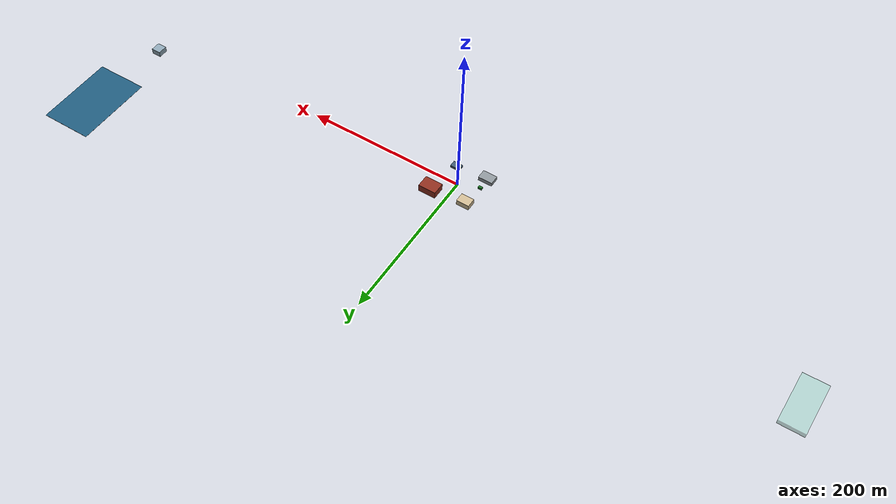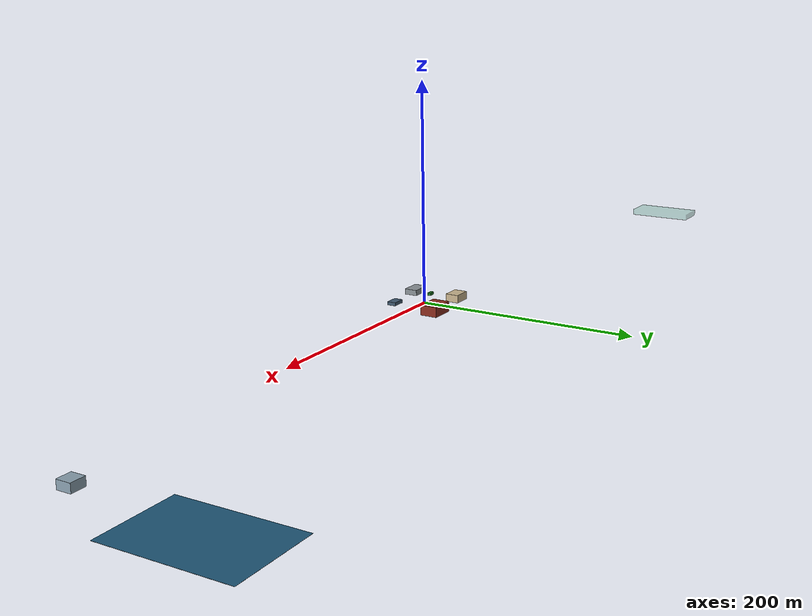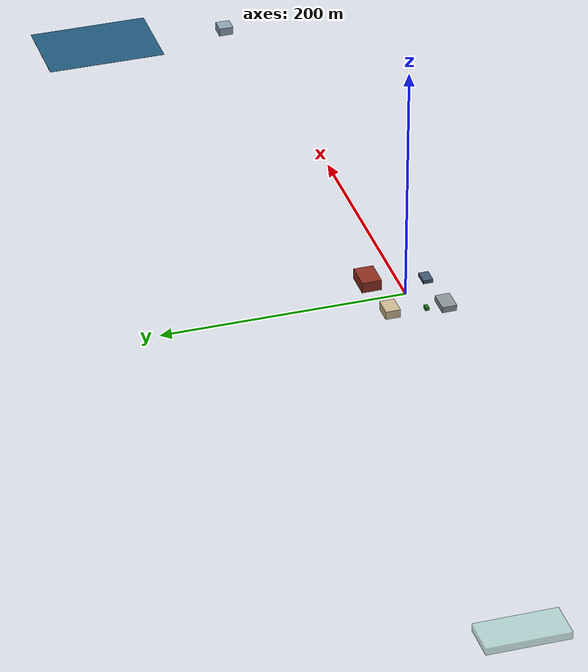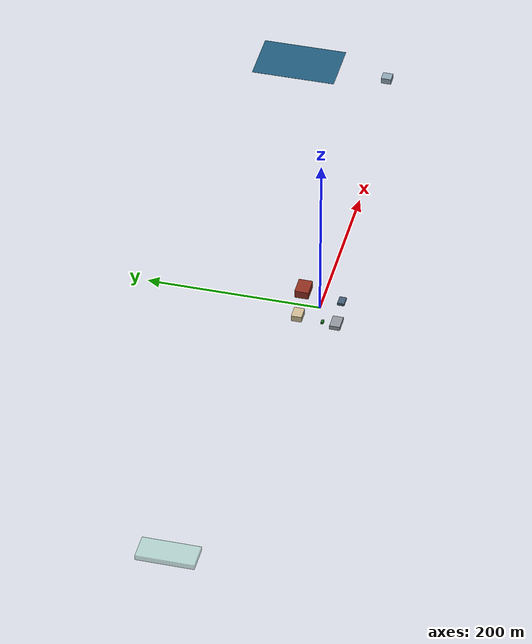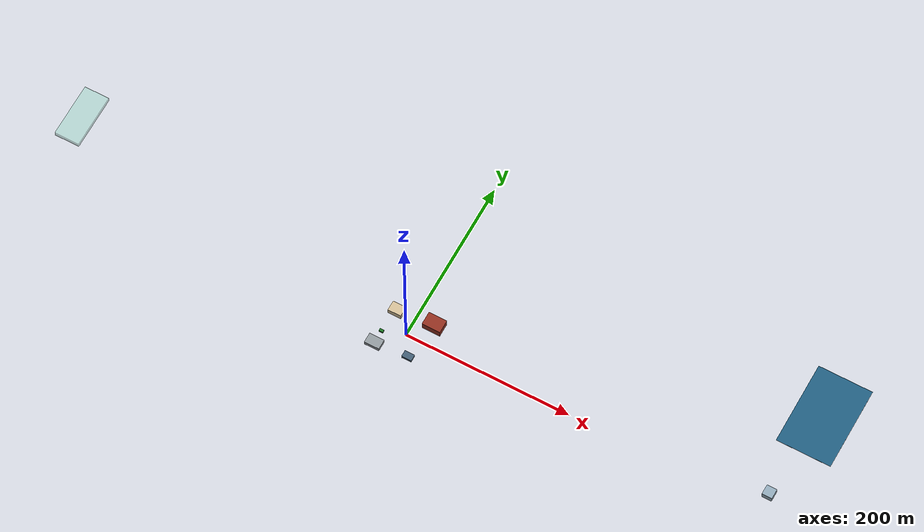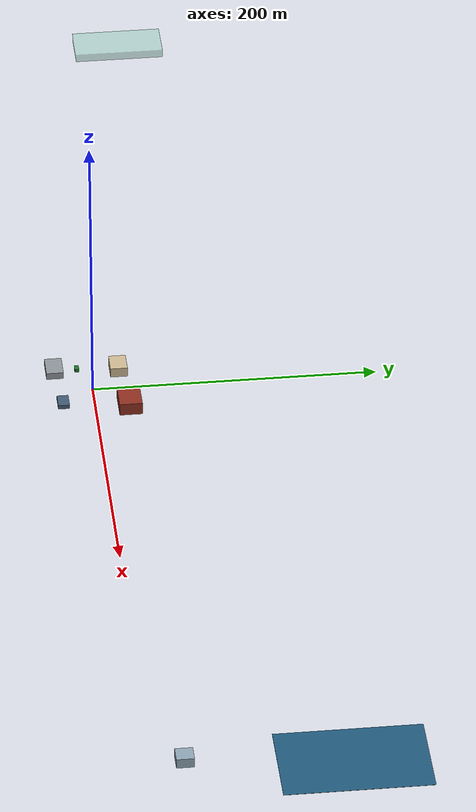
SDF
<sdf version="1.9">
 <world name="agriculture">
  <model name="farm_structures">
   <static>true</static>
   <link name="link">
    <visual name="farmhouse_visual">
     <pose>-22.0 20.0 3.5 0 0 0</pose>
     <geometry><box><size>16.0 12.0 7</size></box></geometry>
     <material><ambient>0.8 0.72 0.57 1</ambient><diffuse>0.8 0.72 0.57 1</diffuse></material>
    </visual>
    <collision name="farmhouse_collision">
     <pose>-22.0 20.0 3.5 0 0 0</pose>
     <geometry><box><size>16.0 12.0 7</size></box></geometry>
    </collision>
    <visual name="barn_visual">
     <pose>22.0 24.0 4.5 0 0 0</pose>
     <geometry><box><size>22.0 16.0 9</size></box></geometry>
     <material><ambient>0.55 0.18 0.12 1</ambient><diffuse>0.55 0.18 0.12 1</diffuse></material>
    </visual>
    <collision name="barn_collision">
     <pose>22.0 24.0 4.5 0 0 0</pose>
     <geometry><box><size>22.0 16.0 9</size></box></geometry>
    </collision>
    <visual name="storage_visual">
     <pose>-25.0 -25.0 2.5 0 0 0</pose>
     <geometry><box><size>18.0 12.0 5</size></box></geometry>
     <material><ambient>0.55 0.58 0.6 1</ambient><diffuse>0.55 0.58 0.6 1</diffuse></material>
    </visual>
    <collision name="storage_collision">
     <pose>-25.0 -25.0 2.5 0 0 0</pose>
     <geometry><box><size>18.0 12.0 5</size></box></geometry>
    </collision>
    <visual name="base_station_visual">
     <pose>15.0 -22.0 1.5 0 0 0</pose>
     <geometry><box><size>12.0 8.0 3</size></box></geometry>
     <material><ambient>0.25 0.35 0.44 1</ambient><diffuse>0.25 0.35 0.44 1</diffuse></material>
    </visual>
    <collision name="base_station_collision">
     <pose>15.0 -22.0 1.5 0 0 0</pose>
     <geometry><box><size>12.0 8.0 3</size></box></geometry>
    </collision>
    <visual name="greenhouse_visual">
     <pose>-440.0 60.0 5.525380446661925 0 0 0</pose>
     <geometry><box><size>30.0 65.0 6</size></box></geometry>
     <material><ambient>0.60 0.81 0.76 0.55</ambient><diffuse>0.60 0.81 0.76 0.55</diffuse></material>
    </visual>
    <collision name="greenhouse_collision">
     <pose>-440.0 60.0 5.525380446661925 0 0 0</pose>
     <geometry><box><size>30.0 65.0 6</size></box></geometry>
    </collision>
    <visual name="pond_visual">
     <pose>440.0 130.0 1.4618722505694273 0 0 0</pose>
     <geometry><box><size>65.0 100.0 0.15</size></box></geometry>
     <material><ambient>0.12 0.35 0.48 1</ambient><diffuse>0.12 0.35 0.48 1</diffuse></material>
    </visual>
    <visual name="water_tank_visual">
     <pose>430.0 20.0 4.419654344782106 0 0 0</pose>
     <geometry><box><size>12.0 12.0 7</size></box></geometry>
     <material><ambient>0.55 0.64 0.7 1</ambient><diffuse>0.55 0.64 0.7 1</diffuse></material>
    </visual>
    <collision name="water_tank_collision">
     <pose>430.0 20.0 4.419654344782106 0 0 0</pose>
     <geometry><box><size>12.0 12.0 7</size></box></geometry>
    </collision>
    <visual name="tractor_visual">
     <pose>-25.0 -9.0 1.25 0 0 0</pose>
     <geometry><box><size>5.0 3.0 2.5</size></box></geometry>
     <material><ambient>0.1 0.45 0.13 1</ambient><diffuse>0.1 0.45 0.13 1</diffuse></material>
    </visual>
    <collision name="tractor_collision">
     <pose>-25.0 -9.0 1.25 0 0 0</pose>
     <geometry><box><size>5.0 3.0 2.5</size></box></geometry>
    </collision>
   </link>
  </model>
 </world>
</sdf>
